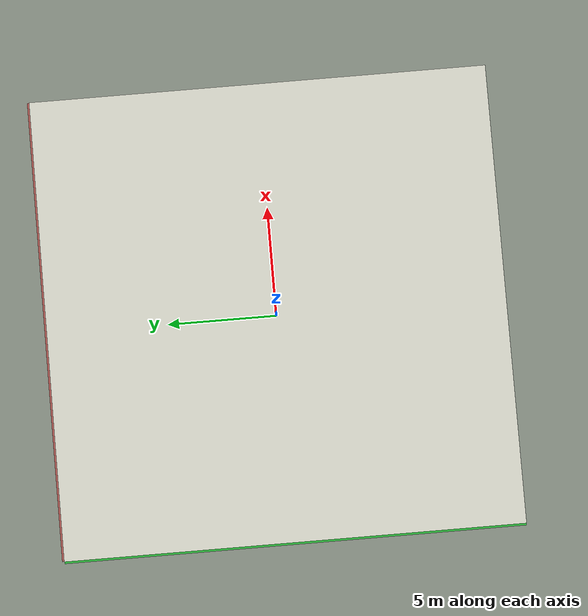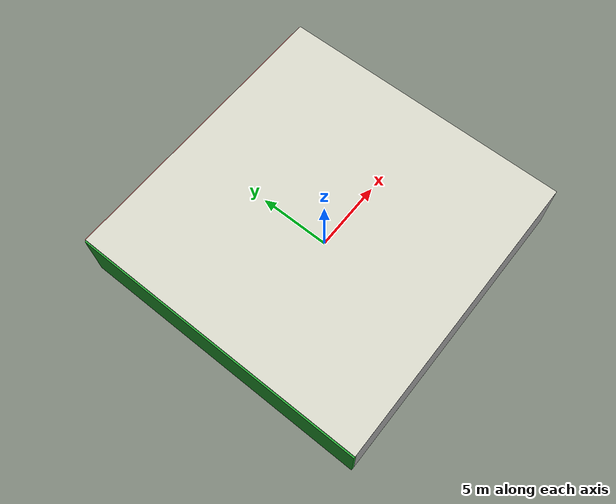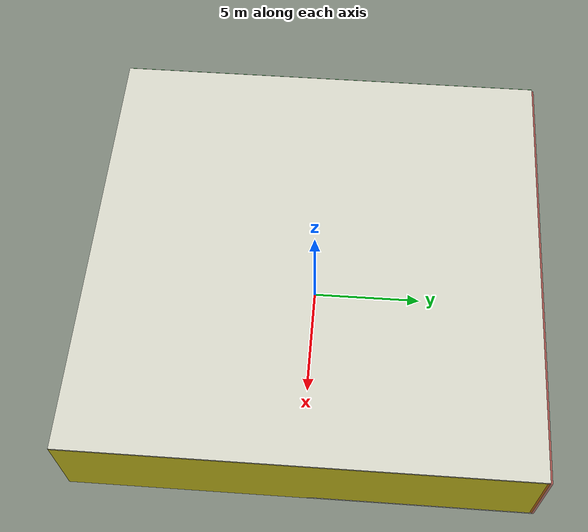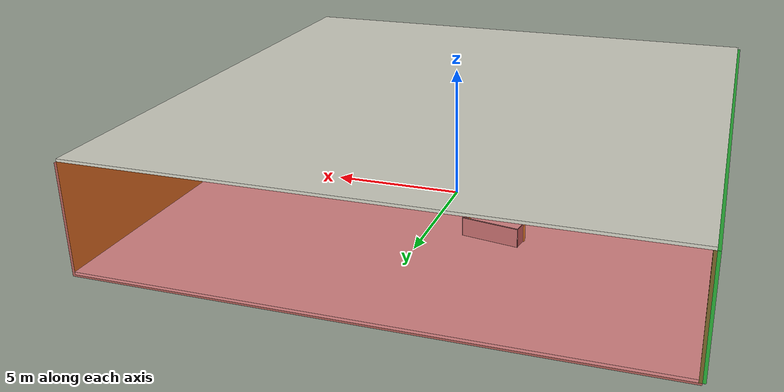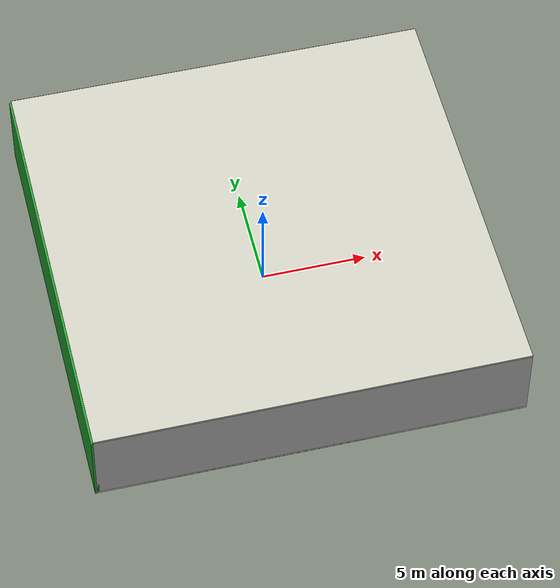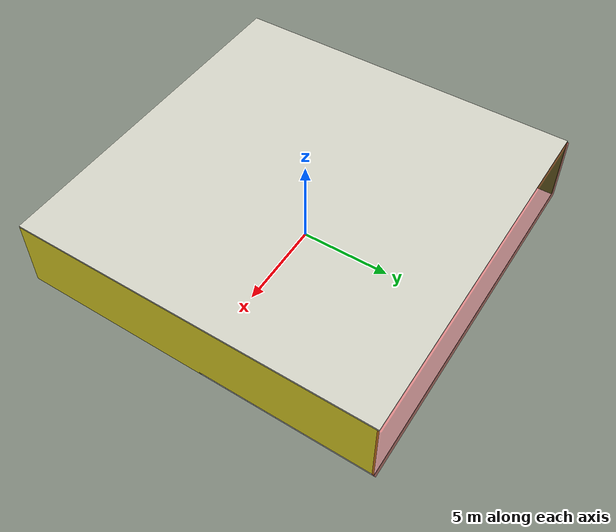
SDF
<sdf version="1.4">
 <world name="default">
  <physics type="ode">
   <max_step_size>0.001</max_step_size>
   <real_time_factor>1</real_time_factor>
   <real_time_update_rate>1000</real_time_update_rate>
   <gravity>0 0 -9.8</gravity>
  </physics>
  <scene><ambient>0.4 0.4 0.4 1</ambient><background>0.7 0.7 0.7 1</background><shadows>1</shadows></scene>
  <model name="Surrounding">
   <static>1</static>
   <link name="Ceiling">
    <collision name="Ceiling_Collision"><geometry><box><size>20 20 0.1</size></box></geometry></collision>
    <visual name="Ceiling_Visual">
     <geometry><box><size>20 20 0.1</size></box></geometry>
     <material>
      <script><uri>file://media/materials/scripts/gazebo.material</uri><name>Gazebo/PaintedWall</name></script>
     </material>
    </visual>
    <pose>0 0 4.05 0 0 0</pose>
   </link>
   <link name="Wall_South">
    <collision name="Wall_South_Collision">
     <geometry><box><size>20 0 4</size></box></geometry>
     <pose>0 0 2 0 -0 0</pose>
    </collision>
    <visual name="Wall_South_Visual">
     <pose>0 0 2 0 -0 0</pose>
     <geometry><box><size>20 0 4</size></box></geometry>
     <material>
      <script><uri>file://media/materials/scripts/gazebo.material</uri><name>Gazebo/CloudySky</name></script>
     </material>
    </visual>
    <velocity_decay><linear>0</linear><angular>0</angular></velocity_decay>
    <pose>0 -10 0 0 -0 0</pose>
   </link>
   <link name="Wall_East">
    <collision name="Wall_21_Collision">
     <geometry><box><size>20 0 4</size></box></geometry>
     <pose>0 0 2 0 -0 0</pose>
    </collision>
    <visual name="Wall_21_Visual">
     <pose>0 0 2 0 -0 0</pose>
     <geometry><box><size>20 0 4</size></box></geometry>
     <material>
      <script><uri>file://media/materials/scripts/gazebo.material</uri><name>Gazebo/Yellow</name></script>
     </material>
    </visual>
    <velocity_decay><linear>0</linear><angular>0</angular></velocity_decay>
    <pose>10 0 0 0 -0 1.5708</pose>
   </link>
   <link name="Wall_North">
    <collision name="Wall_22_Collision">
     <geometry><box><size>20 0.2 4</size></box></geometry>
     <pose>0 0 2 0 -0 0</pose>
    </collision>
    <visual name="Wall_22_Visual">
     <pose>0 0 2 0 -0 0</pose>
     <geometry><box><size>20 0.2 4</size></box></geometry>
     <material>
      <script><uri>file://media/materials/scripts/gazebo.material</uri><name>Gazebo/RedTransparent</name></script>
     </material>
    </visual>
    <velocity_decay><linear>0</linear><angular>0</angular></velocity_decay>
    <pose>0 10 0 0 -0 0</pose>
   </link>
   <link name="Wall_West">
    <collision name="Wall_23_Collision">
     <geometry><box><size>20 0.2 4</size></box></geometry>
     <pose>0 0 2 0 -0 0</pose>
    </collision>
    <visual name="Wall_23_Visual">
     <pose>0 0 2 0 -0 0</pose>
     <geometry><box><size>20 0.2 4</size></box></geometry>
     <material>
      <script><uri>file://media/materials/scripts/gazebo.material</uri><name>Gazebo/GreenGlow</name></script>
     </material>
    </visual>
    <velocity_decay><linear>0</linear><angular>0</angular></velocity_decay>
    <pose>-10 0 0 0 0 -1.5708</pose>
   </link>
   <link name="Ground_link">
    <collision name="collision">
     <pose>0 0 .05 0 -0 0</pose>
     <geometry><box><size>20 20 0.1</size></box></geometry>
    </collision>
    <visual name="visual">
     <pose>0 0 .05 0 -0 0</pose>
     <geometry><box><size>20 20 0.1</size></box></geometry>
     <material>
      <script><uri>file://media/materials/scripts/gazebo.material</uri><name>Gazebo/White</name></script>
     </material>
    </visual>
   </link>
   <static>1</static>
  </model>
  <spherical_coordinates>
   <surface_model>EARTH_WGS84</surface_model>
   <latitude_deg>0</latitude_deg>
   <longitude_deg>0</longitude_deg>
   <elevation>0</elevation>
   <heading_deg>0</heading_deg>
  </spherical_coordinates>
  <light name="lightball_0" type="diffuse">
   <diffuse>0.8 0.8 0.8 1</diffuse>
   <specular>0.2 0.2 0.2 1</specular>
   <attenuation>
    <range>100</range>
    <constant>0.7</constant>
    <linear>0.01</linear>
    <quadratic>0.001</quadratic>
   </attenuation>
   <direction>-0.5 0.1 -0.9</direction>
   <pose>0.0564201366189 -6.31482519448 1.27138965228 0 0 0</pose>
  </light>
  <light name="lightball_1" type="diffuse">
   <diffuse>0.8 0.8 0.8 1</diffuse>
   <specular>0.2 0.2 0.2 1</specular>
   <attenuation>
    <range>100</range>
    <constant>0.7</constant>
    <linear>0.01</linear>
    <quadratic>0.001</quadratic>
   </attenuation>
   <direction>-0.5 0.1 -0.9</direction>
   <pose>8.50224270418 9.67692212704 2.90264204023 0 0 0</pose>
  </light>
  <light name="lightball_2" type="diffuse">
   <diffuse>0.8 0.8 0.8 1</diffuse>
   <specular>0.2 0.2 0.2 1</specular>
   <attenuation>
    <range>100</range>
    <constant>0.7</constant>
    <linear>0.01</linear>
    <quadratic>0.001</quadratic>
   </attenuation>
   <direction>-0.5 0.1 -0.9</direction>
   <pose>7.15216174504 -2.54498123468 2.01625022545 0 0 0</pose>
  </light>
  <light name="lightball_3" type="diffuse">
   <diffuse>0.8 0.8 0.8 1</diffuse>
   <specular>0.2 0.2 0.2 1</specular>
   <attenuation>
    <range>100</range>
    <constant>0.7</constant>
    <linear>0.01</linear>
    <quadratic>0.001</quadratic>
   </attenuation>
   <direction>-0.5 0.1 -0.9</direction>
   <pose>-1.57555584919 9.08487573529 3.37379852392 0 0 0</pose>
  </light>
  <light name="lightball_4" type="diffuse">
   <diffuse>0.8 0.8 0.8 1</diffuse>
   <specular>0.2 0.2 0.2 1</specular>
   <attenuation>
    <range>100</range>
    <constant>0.7</constant>
    <linear>0.01</linear>
    <quadratic>0.001</quadratic>
   </attenuation>
   <direction>-0.5 0.1 -0.9</direction>
   <pose>-3.66687099777 6.20086294177 1.18298579095 0 0 0</pose>
  </light>
  <light name="lightball_5" type="diffuse">
   <diffuse>0.8 0.8 0.8 1</diffuse>
   <specular>0.2 0.2 0.2 1</specular>
   <attenuation>
    <range>100</range>
    <constant>0.7</constant>
    <linear>0.01</linear>
    <quadratic>0.001</quadratic>
   </attenuation>
   <direction>-0.5 0.1 -0.9</direction>
   <pose>2.65894314988 7.39795115889 1.84427956303 0 0 0</pose>
  </light>
  <light name="lightball_6" type="diffuse">
   <diffuse>0.8 0.8 0.8 1</diffuse>
   <specular>0.2 0.2 0.2 1</specular>
   <attenuation>
    <range>100</range>
    <constant>0.7</constant>
    <linear>0.01</linear>
    <quadratic>0.001</quadratic>
   </attenuation>
   <direction>-0.5 0.1 -0.9</direction>
   <pose>-5.54425937149 0.340530546297 2.51131212973 0 0 0</pose>
  </light>
  <light name="lightball_7" type="diffuse">
   <diffuse>0.8 0.8 0.8 1</diffuse>
   <specular>0.2 0.2 0.2 1</specular>
   <attenuation>
    <range>100</range>
    <constant>0.7</constant>
    <linear>0.01</linear>
    <quadratic>0.001</quadratic>
   </attenuation>
   <direction>-0.5 0.1 -0.9</direction>
   <pose>-4.85733053629 -4.3657195329 3.76982976343 0 0 0</pose>
  </light>
  <light name="lightball_8" type="diffuse">
   <diffuse>0.8 0.8 0.8 1</diffuse>
   <specular>0.2 0.2 0.2 1</specular>
   <attenuation>
    <range>100</range>
    <constant>0.7</constant>
    <linear>0.01</linear>
    <quadratic>0.001</quadratic>
   </attenuation>
   <direction>-0.5 0.1 -0.9</direction>
   <pose>-7.46461953873 4.05931037673 1.82020335337 0 0 0</pose>
  </light>
  <light name="lightball_9" type="diffuse">
   <diffuse>0.8 0.8 0.8 1</diffuse>
   <specular>0.2 0.2 0.2 1</specular>
   <attenuation>
    <range>100</range>
    <constant>0.7</constant>
    <linear>0.01</linear>
    <quadratic>0.001</quadratic>
   </attenuation>
   <direction>-0.5 0.1 -0.9</direction>
   <pose>-9.33739710557 2.69921339549 1.53601238496 0 0 0</pose>
  </light>
  <light name="lightball_10" type="diffuse">
   <diffuse>0.8 0.8 0.8 1</diffuse>
   <specular>0.2 0.2 0.2 1</specular>
   <attenuation>
    <range>100</range>
    <constant>0.7</constant>
    <linear>0.01</linear>
    <quadratic>0.001</quadratic>
   </attenuation>
   <direction>-0.5 0.1 -0.9</direction>
   <pose>7.07857569769 -1.0052375874 1.71040114963 0 0 0</pose>
  </light>
  <light name="lightball_11" type="diffuse">
   <diffuse>0.8 0.8 0.8 1</diffuse>
   <specular>0.2 0.2 0.2 1</specular>
   <attenuation>
    <range>100</range>
    <constant>0.7</constant>
    <linear>0.01</linear>
    <quadratic>0.001</quadratic>
   </attenuation>
   <direction>-0.5 0.1 -0.9</direction>
   <pose>5.4340841796 8.9120338682 1.51406730997 0 0 0</pose>
  </light>
  <light name="lightball_12" type="diffuse">
   <diffuse>0.8 0.8 0.8 1</diffuse>
   <specular>0.2 0.2 0.2 1</specular>
   <attenuation>
    <range>100</range>
    <constant>0.7</constant>
    <linear>0.01</linear>
    <quadratic>0.001</quadratic>
   </attenuation>
   <direction>-0.5 0.1 -0.9</direction>
   <pose>-0.481158149695 4.46393835907 2.93362362792 0 0 0</pose>
  </light>
  <light name="lightball_13" type="diffuse">
   <diffuse>0.8 0.8 0.8 1</diffuse>
   <specular>0.2 0.2 0.2 1</specular>
   <attenuation>
    <range>100</range>
    <constant>0.7</constant>
    <linear>0.01</linear>
    <quadratic>0.001</quadratic>
   </attenuation>
   <direction>-0.5 0.1 -0.9</direction>
   <pose>-8.64657807365 9.91362446986 3.59555639825 0 0 0</pose>
  </light>
  <include>
   <uri>model://construction_cone</uri>
   <pose>-7.97534567639 -8.06348040448 0 0 0 0.273304013258</pose>
  </include>
  <include>
   <uri>model://robocup_3Dsim_goal</uri>
   <pose>-1.18061357217 -8.08700199453 0 0 0 1.63742635937</pose>
  </include>
  <include>
   <uri>model://robocup_3Dsim_goal</uri>
   <pose>-2.4845108874 3.30578477752 0 0 0 1.40225484018</pose>
  </include>
  <include>
   <uri>model://construction_cone</uri>
   <pose>3.67930904207 -0.67096126709 0 0 0 0.61557258372</pose>
  </include>
  <include><uri>model://cabinet</uri><pose>5.13272230493 1.79713558392 0 0 0 2.75309036665</pose></include>
 </world>
</sdf>

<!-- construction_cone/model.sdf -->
<sdf version="1.5">
  <model name="Construction Cone">
    <link name="link">
      <collision name="collision">
        <geometry>
          <mesh>
            <scale>10 10 10</scale>
            <uri>file://isr-testbed/construction_cone/meshes/construction_cone.dae</uri>
          </mesh>
        </geometry>
      </collision>
      <visual name="visual">
        <geometry>
          <mesh>
            <scale>10 10 10</scale>
            <uri>file://isr-testbed/construction_cone/meshes/construction_cone.dae</uri>
          </mesh>
        </geometry>
      </visual>
    </link>
  </model>
</sdf>

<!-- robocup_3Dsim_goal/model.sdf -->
<sdf version="1.5">
  <model name="robocup_3d_goal">
    <static>true</static>
    <link name="left_post">
      <pose>0 1.05 0.45 0 0 0</pose>
      <collision name="collision">
        <geometry>
          <cylinder>
            <radius>0.05</radius>
            <length>0.9</length>
          </cylinder>
        </geometry>
      </collision>
      <visual name="visual">
        <geometry>
          <cylinder>
            <radius>0.05</radius>
            <length>0.9</length>
          </cylinder>
        </geometry>
        <material>
          <script>
            <uri>file://media/materials/scripts/gazebo.material</uri>
            <name>Gazebo/ZincYellow</name>
          </script>
        </material>
      </visual>
    </link>
    <link name="left_support_horiz_lower">
      <pose>0.30 1.05 0.01 0 0 0</pose>
      <collision name="collision">
        <geometry>
          <box>
            <size>0.50 0.02 0.02</size>
          </box>
        </geometry>
      </collision>
      <visual name="visual">
        <geometry>
          <box>
            <size>0.50 0.02 0.02</size>
          </box>
        </geometry>
        <material>
          <script>
            <uri>file://media/materials/scripts/gazebo.material</uri>
            <name>Gazebo/White</name>
          </script>
        </material>
      </visual>
    </link>
    <link name="left_support_horiz_upper">
      <pose>0.30 1.05 0.79 0 0 0</pose>
      <collision name="collision">
        <geometry>
          <box>
            <size>0.50 0.02 0.02</size>
          </box>
        </geometry>
      </collision>
      <visual name="visual">
        <geometry>
          <box>
            <size>0.50 0.02 0.02</size>
          </box>
        </geometry>
        <material>
          <script>
            <uri>file://media/materials/scripts/gazebo.material</uri>
            <name>Gazebo/White</name>
          </script>
        </material>
      </visual>
    </link>
    <link name="left_support_vertical">
      <pose>0.56 1.05 0.4 0 1.5708 0</pose>
      <collision name="collision">
        <geometry>
          <box>
            <size>0.80 0.02 0.02</size>
          </box>
        </geometry>
      </collision>
      <visual name="visual">
        <geometry>
          <box>
            <size>0.80 0.02 0.02</size>
          </box>
        </geometry>
        <material>
          <script>
            <uri>file://media/materials/scripts/gazebo.material</uri>
            <name>Gazebo/White</name>
          </script>
        </material>
      </visual>
    </link>
    <link name="right_support_horiz_lower">
      <pose>0.30 -1.05 0.01 0 0 0</pose>
      <collision name="collision">
        <geometry>
          <box>
            <size>0.50 0.02 0.02</size>
          </box>
        </geometry>
      </collision>
      <visual name="visual">
        <geometry>
          <box>
            <size>0.50 0.02 0.02</size>
          </box>
        </geometry>
        <material>
          <script>
            <uri>file://media/materials/scripts/gazebo.material</uri>
            <name>Gazebo/White</name>
          </script>
        </material>
      </visual>
    </link>
    <link name="right_support_horiz_upper">
      <pose>0.30 -1.05 0.79 0 0 0</pose>
      <collision name="collision">
        <geometry>
          <box>
            <size>0.50 0.02 0.02</size>
          </box>
        </geometry>
      </collision>
      <visual name="visual">
        <geometry>
          <box>
            <size>0.50 0.02 0.02</size>
          </box>
        </geometry>
        <material>
          <script>
            <uri>file://media/materials/scripts/gazebo.material</uri>
            <name>Gazebo/White</name>
          </script>
        </material>
      </visual>
    </link>
    <link name="right_support_vertical">
      <pose>0.56 -1.05 0.4 0 1.5708 0</pose>
      <collision name="collision">
        <geometry>
          <box>
            <size>0.80 0.02 0.02</size>
          </box>
        </geometry>
      </collision>
      <visual name="visual">
        <geometry>
          <box>
            <size>0.80 0.02 0.02</size>
          </box>
        </geometry>
        <material>
          <script>
            <uri>file://media/materials/scripts/gazebo.material</uri>
            <name>Gazebo/White</name>
          </script>
        </material>
      </visual>
    </link>
    <link name="center_support_horiz_lower">
      <pose>0.56 0 0.01 0 1.5708 0</pose>
      <collision name="collision">
        <geometry>
          <box>
            <size>0.02 2.08 0.02</size>
          </box>
        </geometry>
      </collision>
      <visual name="visual">
        <geometry>
          <box>
            <size>0.02 2.08 0.02</size>
          </box>
        </geometry>
        <material>
          <script>
            <uri>file://media/materials/scripts/gazebo.material</uri>
            <name>Gazebo/White</name>
          </script>
        </material>
      </visual>
    </link>
    <link name="center_support_horiz_upper">
      <pose>0.56 0 0.79 0 1.5708 0</pose>
      <collision name="collision">
        <geometry>
          <box>
            <size>0.02 2.08 0.02</size>
          </box>
        </geometry>
      </collision>
      <visual name="visual">
        <geometry>
          <box>
            <size>0.02 2.08 0.02</size>
          </box>
        </geometry>
        <material>
          <script>
            <uri>file://media/materials/scripts/gazebo.material</uri>
            <name>Gazebo/White</name>
          </script>
        </material>
      </visual>
    </link>
    <link name="right_post">
      <pose>0 -1.05 0.45 0 0 0</pose>
      <collision name="collision">
        <geometry>
          <cylinder>
            <radius>0.05</radius>
            <length>0.9</length>
          </cylinder>
        </geometry>
      </collision>
      <visual name="visual">
        <geometry>
          <cylinder>
            <radius>0.05</radius>
            <length>0.9</length>
          </cylinder>
        </geometry>
        <material>
          <script>
            <uri>file://media/materials/scripts/gazebo.material</uri>
            <name>Gazebo/ZincYellow</name>
          </script>
        </material>
      </visual>
    </link>
    <link name="crossbar">
      <pose>0 0 0.85 1.57 1.57 0</pose>
      <collision name="collision">
        <geometry>
          <cylinder>
            <radius>0.05</radius>
            <length>2.0</length>
          </cylinder>
        </geometry>
      </collision>
      <visual name="visual">
        <geometry>
          <cylinder>
            <radius>0.05</radius>
            <length>2.0</length>
          </cylinder>
        </geometry>
        <material>
          <script>
            <uri>file://media/materials/scripts/gazebo.material</uri>
            <name>Gazebo/ZincYellow</name>
          </script>
        </material>
      </visual>
    </link>
    <link name="center_net">
      <pose>0.56 0 0.40 0 0 0</pose>
      <collision name="collision">
        <geometry>
          <box>
            <size>0.01 2.1 0.80</size>
          </box>
        </geometry>
      </collision>
      <visual name="visual">
        <geometry>
          <box>
            <size>0.01 2.1 0.80</size>
          </box>
        </geometry>
        <material>
          <script>
            <uri>model://../model_source/models/robocup09_spl_field/materials/scripts/</uri>
            <uri>model://../model_source/models/robocup09_spl_field/materials/textures/</uri>
            <name>RoboCup/Net</name>
          </script>
        </material>
      </visual>
    </link>
    <link name="left_net">
      <pose>0.30 1.05 0.40 0 0 0</pose>
      <collision name="collision">
        <geometry>
          <box>
            <size>0.50 0.01 0.76</size>
          </box>
        </geometry>
      </collision>
      <visual name="visual">
        <geometry>
          <box>
            <size>0.50 0.01 0.76</size>
          </box>
        </geometry>
        <material>
          <script>
            <uri>model://../model_source/models/robocup09_spl_field/materials/scripts/</uri>
            <uri>model://../model_source/models/robocup09_spl_field/materials/textures/</uri>
            <name>RoboCup/Net</name>
          </script>
        </material>
      </visual>
    </link>
    <link name="right_net">
      <pose>0.30 -1.05 0.40 0 0 0</pose>
      <collision name="collision">
        <geometry>
          <box>
            <size>0.50 0.01 0.76</size>
          </box>
        </geometry>
      </collision>
      <visual name="visual">
        <geometry>
          <box>
            <size>0.50 0.01 0.76</size>
          </box>
        </geometry>
        <material>
          <script>
            <uri>model://../model_source/models/robocup09_spl_field/materials/scripts/</uri>
            <uri>model://../model_source/models/robocup09_spl_field/materials/textures/</uri>
            <name>RoboCup/Net</name>
          </script>
        </material>
      </visual>
    </link>
  </model>
</sdf>

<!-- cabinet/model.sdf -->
<sdf version="1.5">
  <model name="cabinet">
    <static>true</static>
    <link name="cabinet_bottom_plate">
      <inertial>
        <pose>0 0 -1 0 0 0</pose>
        <inertia>
          <ixx>2.050000</ixx>
          <ixy>0</ixy>
          <ixz>0</ixz>
          <iyy>2.050000</iyy>
          <iyz>0</iyz>
          <izz>2.050000</izz>
        </inertia>
        <mass>25.000000</mass>
      </inertial>
      <collision name="cabinet_bottom_plate_geom">
        <pose>0 0 0.010000 0 0 0</pose>
        <geometry>
          <box>
            <size>0.450000 0.450000 0.020000</size>
          </box>
        </geometry>
      </collision>
      <visual name="cabinet_bottom_plate_geom_visual">
        <pose>0 0 0.010000 0 0 0</pose>
        <geometry>
          <box>
            <size>0.450000 0.450000 0.020000</size>
          </box>
        </geometry>
        <material>
          <script>
            <uri>model://media/materials/scripts/gazebo.material</uri>
            <name>Gazebo/Wood</name>
          </script>
        </material>
      </visual>
      <collision name="cabinet_bottom_plate_geom_cabinet_back_plate">
        <pose>0.235000 0 0.510000 0 0 0</pose>
        <geometry>
          <box>
            <size>0.020000 0.450000 1.020000</size>
          </box>
        </geometry>
      </collision>
      <visual name="cabinet_bottom_plate_geom_cabinet_back_plate_visual">
        <pose>0.235000 0 0.510000 0 0 0</pose>
        <geometry>
          <box>
            <size>0.020000 0.450000 1.020000</size>
          </box>
        </geometry>
        <material>
          <script>
            <uri>model://media/materials/scripts/gazebo.material</uri>
            <name>Gazebo/Wood</name>
          </script>
        </material>
      </visual>
      <collision name="cabinet_bottom_plate_geom_cabinet_left_plate">
        <pose>0 0.235000 0.510000 0 0 0</pose>
        <geometry>
          <box>
            <size>0.450000 0.020000 1.020000</size>
          </box>
        </geometry>
      </collision>
      <visual name="cabinet_bottom_plate_geom_cabinet_left_plate_visual">
        <pose>0 0.235000 0.510000 0 0 0</pose>
        <geometry>
          <box>
            <size>0.450000 0.020000 1.020000</size>
          </box>
        </geometry>
        <material>
          <script>
            <uri>model://media/materials/scripts/gazebo.material</uri>
            <name>Gazebo/Wood</name>
          </script>
        </material>
      </visual>
      <collision name="cabinet_bottom_plate_geom_cabinet_middle_plate">
        <pose>0 0 0.510000 0 0 0</pose>
        <geometry>
          <box>
            <size>0.450000 0.450000 0.020000</size>
          </box>
        </geometry>
      </collision>
      <visual name="cabinet_bottom_plate_geom_cabinet_middle_plate_visual">
        <pose>0 0 0.510000 0 0 0</pose>
        <geometry>
          <box>
            <size>0.450000 0.450000 0.020000</size>
          </box>
        </geometry>
        <material>
          <script>
            <uri>model://media/materials/scripts/gazebo.material</uri>
            <name>Gazebo/Wood</name>
          </script>
        </material>
      </visual>
      <collision name="cabinet_bottom_plate_geom_cabinet_right_plate">
        <pose>0 -0.235000 0.510000 0 0 0</pose>
        <geometry>
          <box>
            <size>0.450000 0.020000 1.020000</size>
          </box>
        </geometry>
      </collision>
      <visual name="cabinet_bottom_plate_geom_cabinet_right_plate_visual">
        <pose>0 -0.235000 0.510000 0 0 0</pose>
        <geometry>
          <box>
            <size>0.450000 0.020000 1.020000</size>
          </box>
        </geometry>
        <material>
          <script>
            <uri>model://media/materials/scripts/gazebo.material</uri>
            <name>Gazebo/Wood</name>
          </script>
        </material>
      </visual>
      <collision name="cabinet_bottom_plate_geom_cabinet_top_plate">
        <pose>0 0 1.010000 0 0 0</pose>
        <geometry>
          <box>
            <size>0.450000 0.450000 0.020000</size>
          </box>
        </geometry>
      </collision>
      <visual name="cabinet_bottom_plate_geom_cabinet_top_plate_visual">
        <pose>0 0 1.010000 0 0 0</pose>
        <geometry>
          <box>
            <size>0.450000 0.450000 0.020000</size>
          </box>
        </geometry>
        <material>
          <script>
            <uri>model://media/materials/scripts/gazebo.material</uri>
            <name>Gazebo/Wood</name>
          </script>
        </material>
      </visual>
    </link>
  </model>
</sdf>
